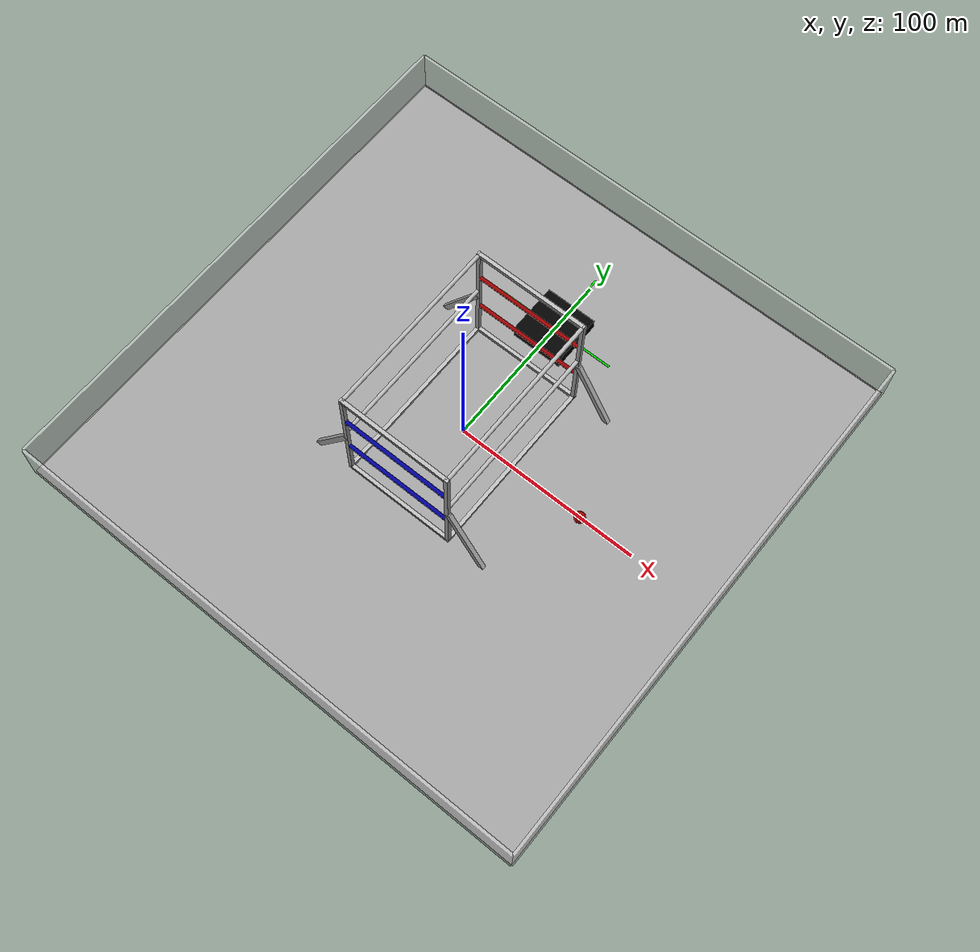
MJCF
<mujoco>
    <option gravity="0 0 -100" />

    <visual>
        <headlight ambient="0.66 0.66 0.7" />
    </visual>

    <worldbody>
        <geom type="plane" size="144 144 0.1" rgba="0.6 0.6 0.6 1" />

        <!-- X coordinate label -->
        <geom name="X1" type="plane" pos="120 0 0.5" euler="0 0 30" size="5 1 0.1" rgba="0 0 0 1"
            conaffinity="0" contype="0" />
        <geom name="X2" type="plane" pos="120 0 0.5" euler="0 0 150" size="5 1 0.1" rgba="0 0 0 1"
            conaffinity="0" contype="0" />

        <!-- Y coordinate label -->
        <geom name="Y1" type="plane" pos="0 120 0.5" euler="0 0 90" size="3 1 0.1" rgba="0 0 0 1"
            conaffinity="0" contype="0" />
        <geom name="Y2" type="plane" pos="-1 125 0.5" euler="0 0 120" size="3 1 0.1" rgba="0 0 0 1"
            conaffinity="0" contype="0" />
        <geom name="Y3" type="plane" pos="1 125 0.5" euler="0 0 60" size="3 1 0.1" rgba="0 0 0 1"
            conaffinity="0" contype="0" />

        <body euler="0 0 0" pos="0 70 3.2" name="robot">
            <geom name="robotbox" type="box" rgba="0 0 0 1" size="14 14 3.2" conaffinity="1"
                contype="1" />

            <geom name="forward" type="cylinder" rgba="0 1 0 1" size="0.5 10 0.5" pos="0 24 0"
                euler="90 0 0" contype="0" conaffinity="0" />
            <geom name="right" type="cylinder" rgba="0 1 0 1" size="0.5 10 0.5" pos="24 0 0"
                euler="0 90 0" contype="0" conaffinity="0" />
            <geom name="backward" type="cylinder" rgba="0 1 0 1" size="0.5 10 0.5" pos="0 -24 0"
                euler="90 0 0" contype="0" conaffinity="0" />
            <geom name="left" type="cylinder" rgba="0 1 0 1" size="0.5 10 0.5" pos="-24 0 0"
                euler="0 90 0" contype="0" conaffinity="0" />

            <joint type="free" name="robotfree" />
        </body>

        <body>
            <geom type="sphere" pos="0 70 0" rgba="0.0 0.6 0.0 1" size="3 3 3" contype="0"
                conaffinity="0" name="start" />
        </body>

        <body>
            <geom type="sphere" pos="70 0 0" rgba="0.6 0.0 0.0 1" size="3 3 3" contype="0"
                conaffinity="0" name="end" />
        </body>

        <body name="submersible" pos="0 0 36.08">
            <geom type="box" rgba="0 0 0 0.01" size="29.5 47.5 36.08" contype="1"
                conaffinity="1" />

            <geom type="cylinder" euler="0 90 0" pos="0 47.5 -10.98" rgba="0.6 0 0 1"
                size="1 29.5 1" />
            <geom type="cylinder" euler="0 90 0" pos="0 47.5 15.02" rgba="0.6 0 0 1"
                size="1 29.5 1" />

            <geom type="cylinder" euler="0 90 0" pos="0 -47.5 -10.98" rgba="0 0 0.6 1"
                size="1 29.5 1" />
            <geom type="cylinder" euler="0 90 0" pos="0 -47.5 15.02" rgba="0 0 0.6 1"
                size="1 29.5 1" />

            <geom type="cylinder" euler="90 0 0" pos="29.5 0 3.08" rgba="0.7 0.7 0.7 1"
                size="1 47.5 1" />
            <geom type="cylinder" euler="90 0 0" pos="29.5 0 35.08" rgba="0.7 0.7 0.7 1"
                size="1 47.5 1" />

            <geom type="cylinder" euler="90 0 0" pos="-29.5 0 3.08" rgba="0.7 0.7 0.7 1"
                size="1 47.5 1" />
            <geom type="cylinder" euler="90 0 0" pos="-29.5 0 35.08" rgba="0.7 0.7 0.7 1"
                size="1 47.5 1" />

            <geom type="box" euler="90 0 0" pos="29.5 47.5 0" rgba="0.7 0.7 0.7 1"
                size="1 36.08 1" />
            <geom type="box" euler="90 0 0" pos="29.5 -47.5 0" rgba="0.7 0.7 0.7 1"
                size="1 36.08 1" />

            <geom type="box" euler="90 0 0" pos="-29.5 47.5 0" rgba="0.7 0.7 0.7 1"
                size="1 36.08 1" />
            <geom type="box" euler="90 0 0" pos="-29.5 -47.5 0" rgba="0.7 0.7 0.7 1"
                size="1 36.08 1" />

            <geom type="box" euler="0 0 0" pos="29.5 0 -35.08" rgba="0.7 0.7 0.7 1"
                size="1 47.5 1" />
            <geom type="box" euler="0 0 0" pos="-29.5 0 -35.08" rgba="0.7 0.7 0.7 1"
                size="1 47.5 1" />

            <geom type="box" euler="0 0 90" pos="0 47.5 -35.08" rgba="0.7 0.7 0.7 1"
                size="1 29.5 1" />
            <geom type="box" euler="0 0 90" pos="0 -47.5 -35.08" rgba="0.7 0.7 0.7 1"
                size="1 29.5 1" />

            <geom type="box" euler="0 0 90" pos="0 47.5 35.08" rgba="0.7 0.7 0.7 1"
                size="1 29.5 1" />
            <geom type="box" euler="0 0 90" pos="0 -47.5 35.08" rgba="0.7 0.7 0.7 1"
                size="1 29.5 1" />

            <geom type="box" euler="0 60 90" pos="40 47.5 -20" rgba="0.7 0.7 0.7 1"
                size="1.125 20 1.38" />
            <geom type="box" euler="0 -60 90" pos="-40 47.5 -20" rgba="0.7 0.7 0.7 1"
                size="1.125 20 1.38" />
            <geom type="box" euler="0 60 90" pos="40 -47.5 -20" rgba="0.7 0.7 0.7 1"
                size="1.125 20 1.38" />
            <geom type="box" euler="0 -60 90" pos="-40 -47.5 -20" rgba="0.7 0.7 0.7 1"
                size="1.125 20 1.38" />
        </body>

        <body name="wall">
            <geom type="box" pos="-144 0 12" rgba="0.8 0.8 0.8 0.5" size="0.75 144 12.2" contype="1"
                conaffinity="1" />
            <geom type="box" pos="144 0 12" rgba="0.8 0.8 0.8 0.5" size="0.75 144 12.2" contype="1"
                conaffinity="1" />
            <geom type="box" pos="0 -144 12" rgba="0.8 0.8 0.8 0.5" size="144 0.75 12.2" contype="1"
                conaffinity="1" />
            <geom type="box" pos="0 144 12" rgba="0.8 0.8 0.8 0.5" size="144 0.75 12.2" contype="1"
                conaffinity="1" />
        </body>
    </worldbody>
</mujoco>
